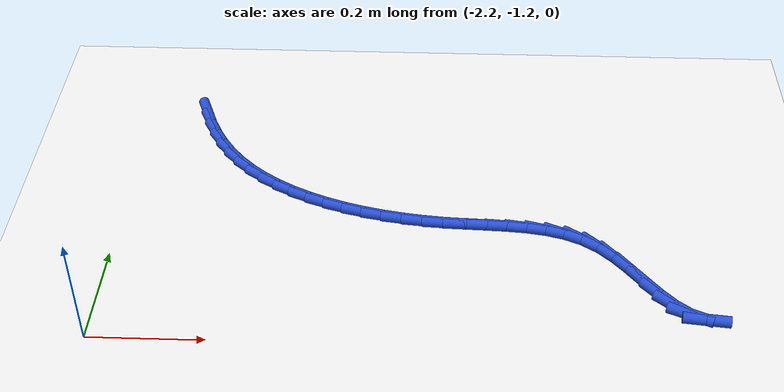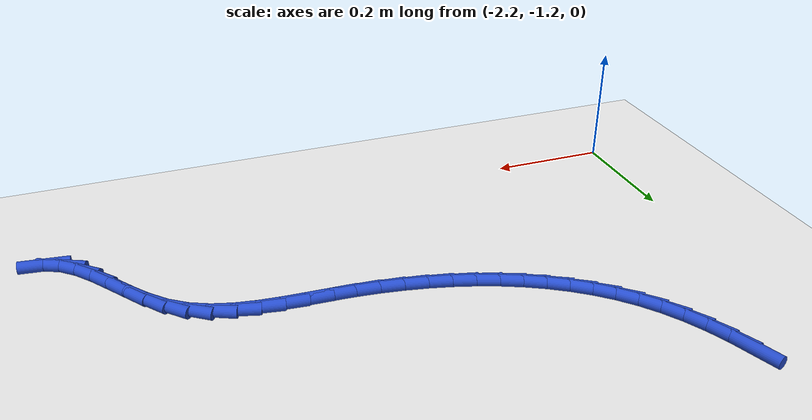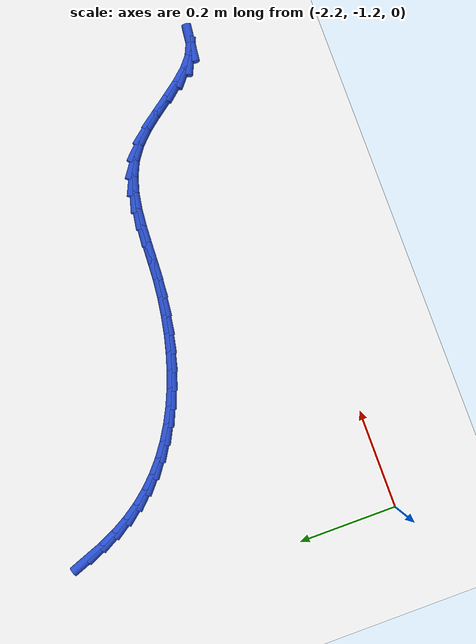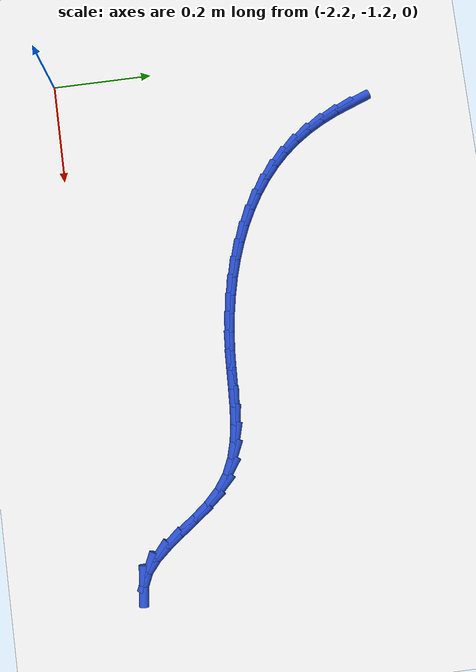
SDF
<sdf version="1.6">
 <world name="default">
  <model name="ground_plane">
   <static>1</static>
   <link name="link">
    <collision name="collision">
     <geometry><plane><normal>0 0 1</normal><size>100 100</size></plane></geometry>
     <surface><friction><ode><mu>100</mu><mu2>50</mu2></ode></friction></surface>
    </collision>
    <visual name="visual">
     <cast_shadows>0</cast_shadows>
     <geometry><plane><normal>0 0 1</normal><size>100 100</size></plane></geometry>
     <material>
      <script><uri>file://media/materials/scripts/gazebo.material</uri><name>Gazebo/WhiteGlow</name></script>
     </material>
    </visual>
   </link>
  </model>
  <model name="line">
   <link name="link_116">
    <pose>-2.087464376652441 -0.5994854990109886 0.01 0 1.57 -1.2090769606434435</pose>
    <collision name="collision">
     <geometry><cylinder><radius>0.01</radius><length>0.08</length></cylinder></geometry>
    </collision>
    <visual name="visual">
     <material>
      <script><name>Gazebo/Blue</name><uri>file://media/materials/scripts/gazebo.material</uri></script>
     </material>
     <geometry><cylinder><radius>0.01</radius><length>0.08</length></cylinder></geometry>
    </visual>
   </link>
   <link name="link_117">
    <pose>-2.075009196848382 -0.6324037420606237 0.01 0 1.57 -1.1380769158262365</pose>
    <collision name="collision">
     <geometry><cylinder><radius>0.01</radius><length>0.08</length></cylinder></geometry>
    </collision>
    <visual name="visual">
     <material>
      <script><name>Gazebo/Blue</name><uri>file://media/materials/scripts/gazebo.material</uri></script>
     </material>
     <geometry><cylinder><radius>0.01</radius><length>0.08</length></cylinder></geometry>
    </visual>
   </link>
   <link name="link_118">
    <pose>-2.060403476683368 -0.6640235674013706 0.01 0 1.57 -1.0601764567257501</pose>
    <collision name="collision">
     <geometry><cylinder><radius>0.01</radius><length>0.08</length></cylinder></geometry>
    </collision>
    <visual name="visual">
     <material>
      <script><name>Gazebo/Blue</name><uri>file://media/materials/scripts/gazebo.material</uri></script>
     </material>
     <geometry><cylinder><radius>0.01</radius><length>0.08</length></cylinder></geometry>
    </visual>
   </link>
   <link name="link_119">
    <pose>-2.043563987195885 -0.6940848075313131 0.01 0 1.57 -0.9747925531528001</pose>
    <collision name="collision">
     <geometry><cylinder><radius>0.01</radius><length>0.08</length></cylinder></geometry>
    </collision>
    <visual name="visual">
     <material>
      <script><name>Gazebo/Blue</name><uri>file://media/materials/scripts/gazebo.material</uri></script>
     </material>
     <geometry><cylinder><radius>0.01</radius><length>0.08</length></cylinder></geometry>
    </visual>
   </link>
   <link name="link_120">
    <pose>-2.024407499424419 -0.7223272949485342 0.01 0 1.57 -0.8821500318503925</pose>
    <collision name="collision">
     <geometry><cylinder><radius>0.01</radius><length>0.08</length></cylinder></geometry>
    </collision>
    <visual name="visual">
     <material>
      <script><name>Gazebo/Blue</name><uri>file://media/materials/scripts/gazebo.material</uri></script>
     </material>
     <geometry><cylinder><radius>0.01</radius><length>0.08</length></cylinder></geometry>
    </visual>
   </link>
   <link name="link_121">
    <pose>-2.002862275583439 -0.7485041835862705 0.01 0 1.57 -0.7891667716848728</pose>
    <collision name="collision">
     <geometry><cylinder><radius>0.01</radius><length>0.08</length></cylinder></geometry>
    </collision>
    <visual name="visual">
     <material>
      <script><name>Gazebo/Blue</name><uri>file://media/materials/scripts/gazebo.material</uri></script>
     </material>
     <geometry><cylinder><radius>0.01</radius><length>0.08</length></cylinder></geometry>
    </visual>
   </link>
   <link name="link_122">
    <pose>-1.979005585301747 -0.7725413679754486 0.01 0 1.57 -0.7012478532765993</pose>
    <collision name="collision">
     <geometry><cylinder><radius>0.01</radius><length>0.08</length></cylinder></geometry>
    </collision>
    <visual name="visual">
     <material>
      <script><name>Gazebo/Blue</name><uri>file://media/materials/scripts/gazebo.material</uri></script>
     </material>
     <geometry><cylinder><radius>0.01</radius><length>0.08</length></cylinder></geometry>
    </visual>
   </link>
   <link name="link_123">
    <pose>-1.953018701121754 -0.7944853106438228 0.01 0 1.57 -0.6189919055025517</pose>
    <collision name="collision">
     <geometry><cylinder><radius>0.01</radius><length>0.08</length></cylinder></geometry>
    </collision>
    <visual name="visual">
     <material>
      <script><name>Gazebo/Blue</name><uri>file://media/materials/scripts/gazebo.material</uri></script>
     </material>
     <geometry><cylinder><radius>0.01</radius><length>0.08</length></cylinder></geometry>
    </visual>
   </link>
   <link name="link_124">
    <pose>-1.9250850194470766 -0.8143849362587354 0.01 0 1.57 -0.5425457179260378</pose>
    <collision name="collision">
     <geometry><cylinder><radius>0.01</radius><length>0.08</length></cylinder></geometry>
    </collision>
    <visual name="visual">
     <material>
      <script><name>Gazebo/Blue</name><uri>file://media/materials/scripts/gazebo.material</uri></script>
     </material>
     <geometry><cylinder><radius>0.01</radius><length>0.08</length></cylinder></geometry>
    </visual>
   </link>
   <link name="link_125">
    <pose>-1.8953879366813282 -0.8322891694875271 0.01 0 1.57 -0.47177923192819055</pose>
    <collision name="collision">
     <geometry><cylinder><radius>0.01</radius><length>0.08</length></cylinder></geometry>
    </collision>
    <visual name="visual">
     <material>
      <script><name>Gazebo/Blue</name><uri>file://media/materials/scripts/gazebo.material</uri></script>
     </material>
     <geometry><cylinder><radius>0.01</radius><length>0.08</length></cylinder></geometry>
    </visual>
   </link>
   <link name="link_126">
    <pose>-1.864110849228125 -0.8482469349975398 0.01 0 1.57 -0.40637009867254237</pose>
    <collision name="collision">
     <geometry><cylinder><radius>0.01</radius><length>0.08</length></cylinder></geometry>
    </collision>
    <visual name="visual">
     <material>
      <script><name>Gazebo/Blue</name><uri>file://media/materials/scripts/gazebo.material</uri></script>
     </material>
     <geometry><cylinder><radius>0.01</radius><length>0.08</length></cylinder></geometry>
    </visual>
   </link>
   <link name="link_127">
    <pose>-1.8314371534910805 -0.8623071574561143 0.01 0 1.57 -0.3458773240307934</pose>
    <collision name="collision">
     <geometry><cylinder><radius>0.01</radius><length>0.08</length></cylinder></geometry>
    </collision>
    <visual name="visual">
     <material>
      <script><name>Gazebo/Blue</name><uri>file://media/materials/scripts/gazebo.material</uri></script>
     </material>
     <geometry><cylinder><radius>0.01</radius><length>0.08</length></cylinder></geometry>
    </visual>
   </link>
   <link name="link_128">
    <pose>-1.7975502458738108 -0.8745187615305928 0.01 0 1.57 -0.289797855961306</pose>
    <collision name="collision">
     <geometry><cylinder><radius>0.01</radius><length>0.08</length></cylinder></geometry>
    </collision>
    <visual name="visual">
     <material>
      <script><name>Gazebo/Blue</name><uri>file://media/materials/scripts/gazebo.material</uri></script>
     </material>
     <geometry><cylinder><radius>0.01</radius><length>0.08</length></cylinder></geometry>
    </visual>
   </link>
   <link name="link_129">
    <pose>-1.7626335227799301 -0.8849306718883161 0.01 0 1.57 -0.2376058510999209</pose>
    <collision name="collision">
     <geometry><cylinder><radius>0.01</radius><length>0.08</length></cylinder></geometry>
    </collision>
    <visual name="visual">
     <material>
      <script><name>Gazebo/Blue</name><uri>file://media/materials/scripts/gazebo.material</uri></script>
     </material>
     <geometry><cylinder><radius>0.01</radius><length>0.08</length></cylinder></geometry>
    </visual>
   </link>
   <link name="link_130">
    <pose>-1.7268703806130539 -0.893591813196626 0.01 0 1.57 -0.18877723623314466</pose>
    <collision name="collision">
     <geometry><cylinder><radius>0.01</radius><length>0.08</length></cylinder></geometry>
    </collision>
    <visual name="visual">
     <material>
      <script><name>Gazebo/Blue</name><uri>file://media/materials/scripts/gazebo.material</uri></script>
     </material>
     <geometry><cylinder><radius>0.01</radius><length>0.08</length></cylinder></geometry>
    </visual>
   </link>
   <link name="link_131">
    <pose>-1.690444215776796 -0.9005511101228634 0.01 0 1.57 -0.14280299849980624</pose>
    <collision name="collision">
     <geometry><cylinder><radius>0.01</radius><length>0.08</length></cylinder></geometry>
    </collision>
    <visual name="visual">
     <material>
      <script><name>Gazebo/Blue</name><uri>file://media/materials/scripts/gazebo.material</uri></script>
     </material>
     <geometry><cylinder><radius>0.01</radius><length>0.08</length></cylinder></geometry>
    </visual>
   </link>
   <link name="link_132">
    <pose>-1.6535384246747724 -0.9058574873343704 0.01 0 1.57 -0.09919436823590481</pose>
    <collision name="collision">
     <geometry><cylinder><radius>0.01</radius><length>0.08</length></cylinder></geometry>
    </collision>
    <visual name="visual">
     <material>
      <script><name>Gazebo/Blue</name><uri>file://media/materials/scripts/gazebo.material</uri></script>
     </material>
     <geometry><cylinder><radius>0.01</radius><length>0.08</length></cylinder></geometry>
    </visual>
   </link>
   <link name="link_133">
    <pose>-1.6163364037105972 -0.909559869498488 0.01 0 1.57 -0.05892779327917827</pose>
    <collision name="collision">
     <geometry><cylinder><radius>0.01</radius><length>0.08</length></cylinder></geometry>
    </collision>
    <visual name="visual">
     <material>
      <script><name>Gazebo/Blue</name><uri>file://media/materials/scripts/gazebo.material</uri></script>
     </material>
     <geometry><cylinder><radius>0.01</radius><length>0.08</length></cylinder></geometry>
    </visual>
   </link>
   <link name="link_134">
    <pose>-1.5790315463267204 -0.9117607104749389 0.01 0 1.57 -0.03781690902676692</pose>
    <collision name="collision">
     <geometry><cylinder><radius>0.01</radius><length>0.08</length></cylinder></geometry>
    </collision>
    <visual name="visual">
     <material>
      <script><name>Gazebo/Blue</name><uri>file://media/materials/scripts/gazebo.material</uri></script>
     </material>
     <geometry><cylinder><radius>0.01</radius><length>0.08</length></cylinder></geometry>
    </visual>
   </link>
   <link name="link_135">
    <pose>-1.541929673493998 -0.9131644578634726 0.01 0 1.57 -0.04624190724062691</pose>
    <collision name="collision">
     <geometry><cylinder><radius>0.01</radius><length>0.08</length></cylinder></geometry>
    </collision>
    <visual name="visual">
     <material>
      <script><name>Gazebo/Blue</name><uri>file://media/materials/scripts/gazebo.material</uri></script>
     </material>
     <geometry><cylinder><radius>0.01</radius><length>0.08</length></cylinder></geometry>
    </visual>
   </link>
   <link name="link_136">
    <pose>-1.5054073809569848 -0.9148545231290087 0.01 0 1.57 -0.08598734781212412</pose>
    <collision name="collision">
     <geometry><cylinder><radius>0.01</radius><length>0.08</length></cylinder></geometry>
    </collision>
    <visual name="visual">
     <material>
      <script><name>Gazebo/Blue</name><uri>file://media/materials/scripts/gazebo.material</uri></script>
     </material>
     <geometry><cylinder><radius>0.01</radius><length>0.08</length></cylinder></geometry>
    </visual>
   </link>
   <link name="link_137">
    <pose>-1.469842367466965 -0.9179202237912963 0.01 0 1.57 -0.16018873555975421</pose>
    <collision name="collision">
     <geometry><cylinder><radius>0.01</radius><length>0.08</length></cylinder></geometry>
    </collision>
    <visual name="visual">
     <material>
      <script><name>Gazebo/Blue</name><uri>file://media/materials/scripts/gazebo.material</uri></script>
     </material>
     <geometry><cylinder><radius>0.01</radius><length>0.08</length></cylinder></geometry>
    </visual>
   </link>
   <link name="link_138">
    <pose>-1.4356123317752223 -0.9234508773700859 0.01 0 1.57 -0.27244008085043053</pose>
    <collision name="collision">
     <geometry><cylinder><radius>0.01</radius><length>0.08</length></cylinder></geometry>
    </collision>
    <visual name="visual">
     <material>
      <script><name>Gazebo/Blue</name><uri>file://media/materials/scripts/gazebo.material</uri></script>
     </material>
     <geometry><cylinder><radius>0.01</radius><length>0.08</length></cylinder></geometry>
    </visual>
   </link>
   <link name="link_139">
    <pose>-1.403094972633042 -0.9325358013851276 0.01 0 1.57 -0.4238474902649321</pose>
    <collision name="collision">
     <geometry><cylinder><radius>0.01</radius><length>0.08</length></cylinder></geometry>
    </collision>
    <visual name="visual">
     <material>
      <script><name>Gazebo/Blue</name><uri>file://media/materials/scripts/gazebo.material</uri></script>
     </material>
     <geometry><cylinder><radius>0.01</radius><length>0.08</length></cylinder></geometry>
    </visual>
   </link>
   <link name="link_140">
    <pose>-1.372667988791708 -0.9462643133561709 0.01 0 1.57 -0.6079078547442839</pose>
    <collision name="collision">
     <geometry><cylinder><radius>0.01</radius><length>0.08</length></cylinder></geometry>
    </collision>
    <visual name="visual">
     <material>
      <script><name>Gazebo/Blue</name><uri>file://media/materials/scripts/gazebo.material</uri></script>
     </material>
     <geometry><cylinder><radius>0.01</radius><length>0.08</length></cylinder></geometry>
    </visual>
   </link>
   <link name="link_141">
    <pose>-1.3447071852052799 -0.9657196997577646 0.01 0 1.57 -0.7813254561972522</pose>
    <collision name="collision">
     <geometry><cylinder><radius>0.01</radius><length>0.08</length></cylinder></geometry>
    </collision>
    <visual name="visual">
     <material>
      <script><name>Gazebo/Blue</name><uri>file://media/materials/scripts/gazebo.material</uri></script>
     </material>
     <geometry><cylinder><radius>0.01</radius><length>0.08</length></cylinder></geometry>
    </visual>
   </link>
   <link name="link_142">
    <pose>-1.3192650105856816 -0.9909554767776598 0.01 0 1.57 -0.8866167938530428</pose>
    <collision name="collision">
     <geometry><cylinder><radius>0.01</radius><length>0.08</length></cylinder></geometry>
    </collision>
    <visual name="visual">
     <material>
      <script><name>Gazebo/Blue</name><uri>file://media/materials/scripts/gazebo.material</uri></script>
     </material>
     <geometry><cylinder><radius>0.01</radius><length>0.08</length></cylinder></geometry>
    </visual>
   </link>
   <link name="link_143">
    <pose>-1.2957075078889455 -1.0198392116098873 0.01 0 1.57 -0.9314637106310171</pose>
    <collision name="collision">
     <geometry><cylinder><radius>0.01</radius><length>0.08</length></cylinder></geometry>
    </collision>
    <visual name="visual">
     <material>
      <script><name>Gazebo/Blue</name><uri>file://media/materials/scripts/gazebo.material</uri></script>
     </material>
     <geometry><cylinder><radius>0.01</radius><length>0.08</length></cylinder></geometry>
    </visual>
   </link>
   <link name="link_144">
    <pose>-1.2733130441886373 -1.049959256122252 0.01 0 1.57 -0.9219103156045271</pose>
    <collision name="collision">
     <geometry><cylinder><radius>0.01</radius><length>0.08</length></cylinder></geometry>
    </collision>
    <visual name="visual">
     <material>
      <script><name>Gazebo/Blue</name><uri>file://media/materials/scripts/gazebo.material</uri></script>
     </material>
     <geometry><cylinder><radius>0.01</radius><length>0.08</length></cylinder></geometry>
    </visual>
   </link>
   <link name="link_145">
    <pose>-1.2513599865583214 -1.0789039621825594 0.01 0 1.57 -0.8509558815775454</pose>
    <collision name="collision">
     <geometry><cylinder><radius>0.01</radius><length>0.08</length></cylinder></geometry>
    </collision>
    <visual name="visual">
     <material>
      <script><name>Gazebo/Blue</name><uri>file://media/materials/scripts/gazebo.material</uri></script>
     </material>
     <geometry><cylinder><radius>0.01</radius><length>0.08</length></cylinder></geometry>
    </visual>
   </link>
   <link name="link_146">
    <pose>-1.2291267020715624 -1.1042616816586128 0.01 0 1.57 -0.694648469991487</pose>
    <collision name="collision">
     <geometry><cylinder><radius>0.01</radius><length>0.08</length></cylinder></geometry>
    </collision>
    <visual name="visual">
     <material>
      <script><name>Gazebo/Blue</name><uri>file://media/materials/scripts/gazebo.material</uri></script>
     </material>
     <geometry><cylinder><radius>0.01</radius><length>0.08</length></cylinder></geometry>
    </visual>
   </link>
   <link name="link_147">
    <pose>-1.205891557801924 -1.1236207664182185 0.01 0 1.57 -0.422236092516336</pose>
    <collision name="collision">
     <geometry><cylinder><radius>0.01</radius><length>0.08</length></cylinder></geometry>
    </collision>
    <visual name="visual">
     <material>
      <script><name>Gazebo/Blue</name><uri>file://media/materials/scripts/gazebo.material</uri></script>
     </material>
     <geometry><cylinder><radius>0.01</radius><length>0.08</length></cylinder></geometry>
    </visual>
   </link>
   <link name="link_148">
    <pose>-1.1809910069130791 -1.1348075197199217 0.01 0 1.57 -0.11262613975594991</pose>
    <collision name="collision">
     <geometry><cylinder><radius>0.01</radius><length>0.08</length></cylinder></geometry>
    </collision>
    <visual name="visual">
     <material>
      <script><name>Gazebo/Blue</name><uri>file://media/materials/scripts/gazebo.material</uri></script>
     </material>
     <geometry><cylinder><radius>0.01</radius><length>0.08</length></cylinder></geometry>
    </visual>
   </link>
  </model>
 </world>
</sdf>
